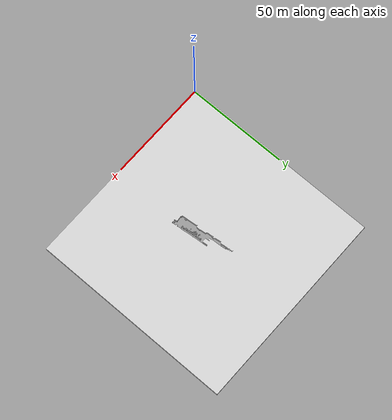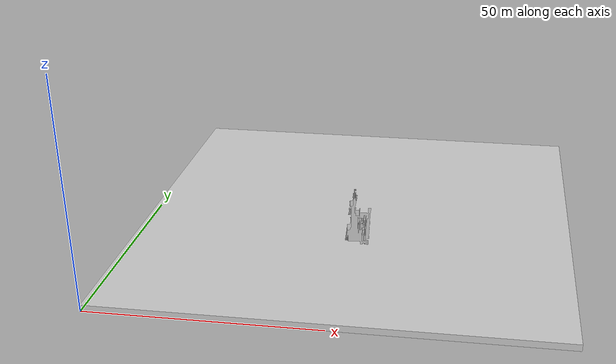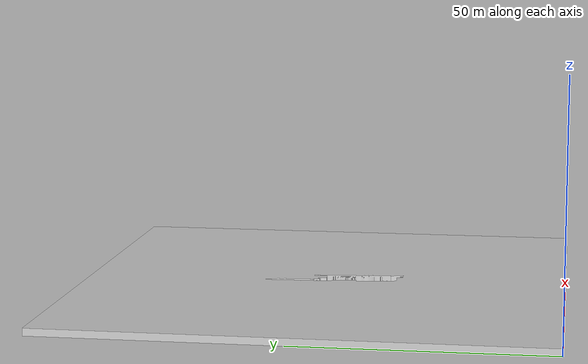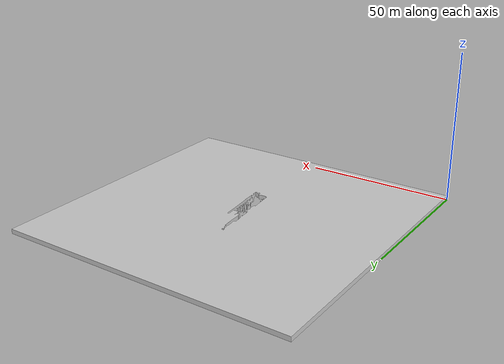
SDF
<?xml version="1.0" ?>
<sdf version="1.0">
  <model name="icelab_room">
    <static>true</static>
    <pose>0 0 0 0 0 0</pose>
    <link name="walls">
      <collision name="collision">
        <geometry>
          <mesh>
            <uri>model://icelab_room/meshes/icelab_room.dae</uri>
          </mesh>
        </geometry>
      </collision>
      <visual name="visual">
        <geometry>
          <mesh>
            <uri>model://icelab_room/meshes/icelab_room.dae</uri>
          </mesh>
        </geometry>
        <cast_shadows>false</cast_shadows>
      </visual>
    </link>
  </model>
</sdf>
